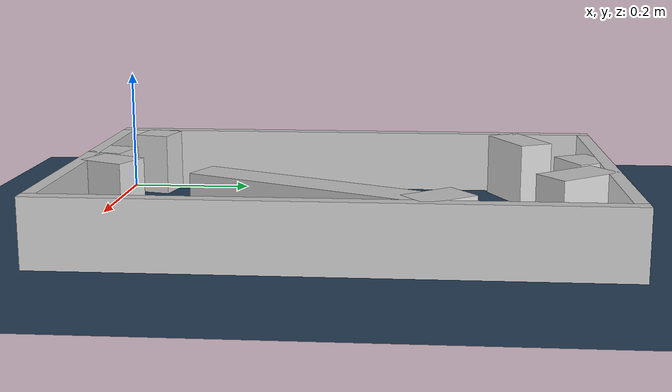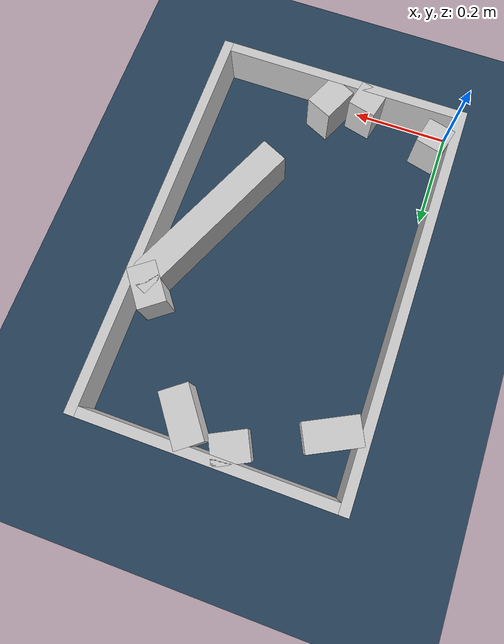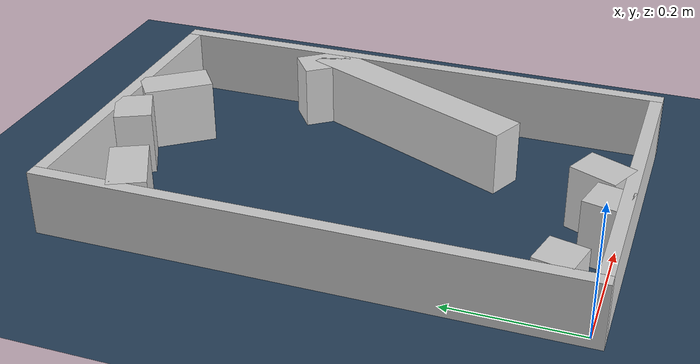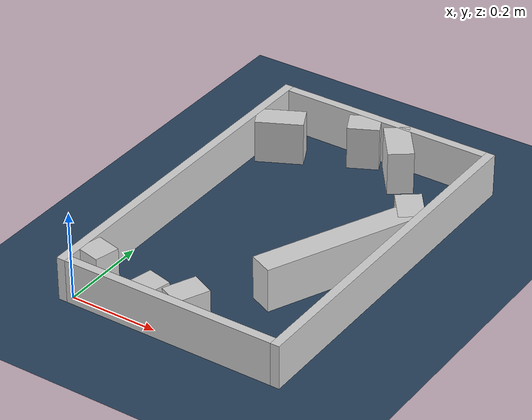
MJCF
<?xml version="1.0" ?>
<mujoco model="generated_real_template">
  <compiler angle="degree"/>
  <option timestep="0.002" integrator="implicitfast" iterations="100" cone="elliptic"/>
  <default>
    <geom density="1"/>
  </default>
  <asset>
    <texture builtin="gradient" height="3072" rgb1="0.3 0.5 0.7" rgb2="0 0 0" type="skybox" width="512"/>
    <texture builtin="checker" height="300" mark="edge" markrgb="0.8 0.8 0.8" name="groundplane" rgb1="0.2 0.3 0.4" rgb2="0.1 0.2 0.3" type="2d" width="300"/>
    <material name="groundplane" reflectance="0.2" texrepeat="5 5" texture="groundplane" texuniform="true"/>
  </asset>
  <worldbody>
    <light dir="0 0 -1" directional="true" pos="0 0 1.5"/>
    <geom name="floor" type="plane" condim="4" friction="0.5 0.005 0.001" material="groundplane" size="0 0 0.05"/>
    <body name="walls">
      <geom name="wall_boundary_left" type="box" condim="4" friction="1.0 0.005 0.0001" rgba="0.8 0.8 0.8 1" pos="-0.010000 0.387500 0.050000" euler="0 0 0.000000" size="0.010000 0.407500 0.050000"/>
      <geom name="wall_boundary_right" type="box" condim="4" friction="1.0 0.005 0.0001" rgba="0.8 0.8 0.8 1" pos="0.500000 0.387500 0.050000" euler="0 0 0.000000" size="0.010000 0.407500 0.050000"/>
      <geom name="wall_boundary_bottom" type="box" condim="4" friction="1.0 0.005 0.0001" rgba="0.8 0.8 0.8 1" pos="0.245000 -0.010000 0.050000" euler="0 0 0.000000" size="0.245000 0.010000 0.050000"/>
      <geom name="wall_boundary_top" type="box" condim="4" friction="1.0 0.005 0.0001" rgba="0.8 0.8 0.8 1" pos="0.245000 0.785000 0.050000" euler="0 0 0.000000" size="0.245000 0.010000 0.050000"/>
      <geom name="wall_inner_1_1" type="box" condim="4" friction="1.0 0.005 0.0001" rgba="0.8 0.8 0.8 1" pos="0.404878 0.361177 0.050000" euler="0 0 -114.473649" size="0.191134 0.028500 0.050000"/>
      <geom name="wall_inner_1_2" type="box" condim="4" friction="1.0 0.005 0.0001" rgba="0.8 0.8 0.8 1" pos="0.256205 0.034546 0.050000" euler="0 0 -114.473649" size="0.037956 0.028500 0.050000"/>
      <geom name="wall_inner_2_1" type="box" condim="4" friction="1.0 0.005 0.0001" rgba="0.8 0.8 0.8 1" pos="0.461957 0.529884 0.050000" euler="0 0 126.780610" size="0.042113 0.028500 0.050000"/>
      <geom name="wall_inner_2_2" type="box" condim="4" friction="1.0 0.005 0.0001" rgba="0.8 0.8 0.8 1" pos="0.311167 0.731592 0.050000" euler="0 0 126.780610" size="0.054197 0.028500 0.050000"/>
      <geom name="wall_inner_3_1" type="box" condim="4" friction="1.0 0.005 0.0001" rgba="0.8 0.8 0.8 1" pos="0.211274 0.753759 0.050000" euler="0 0 -153.684042" size="0.035400 0.028500 0.050000"/>
      <geom name="wall_inner_3_2" type="box" condim="4" friction="1.0 0.005 0.0001" rgba="0.8 0.8 0.8 1" pos="0.047727 0.672872 0.050000" euler="0 0 -153.684042" size="0.053245 0.028500 0.050000"/>
      <geom name="wall_inner_4_1" type="box" condim="4" friction="1.0 0.005 0.0001" rgba="0.8 0.8 0.8 1" pos="0.028062 0.051465 0.050000" euler="0 0 -13.534894" size="0.028864 0.028500 0.050000"/>
      <geom name="wall_inner_4_2" type="box" condim="4" friction="1.0 0.005 0.0001" rgba="0.8 0.8 0.8 1" pos="0.181504 0.014528 0.050000" euler="0 0 -13.534894" size="0.029135 0.028500 0.050000"/>
    </body>
  </worldbody>
</mujoco>
